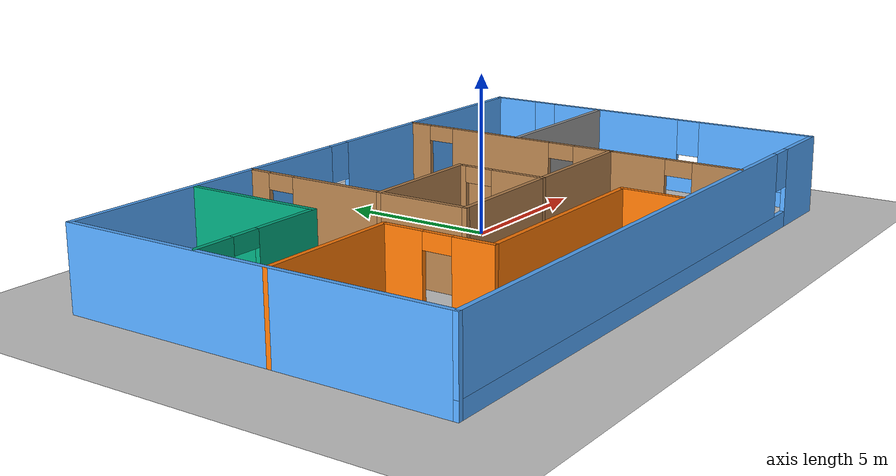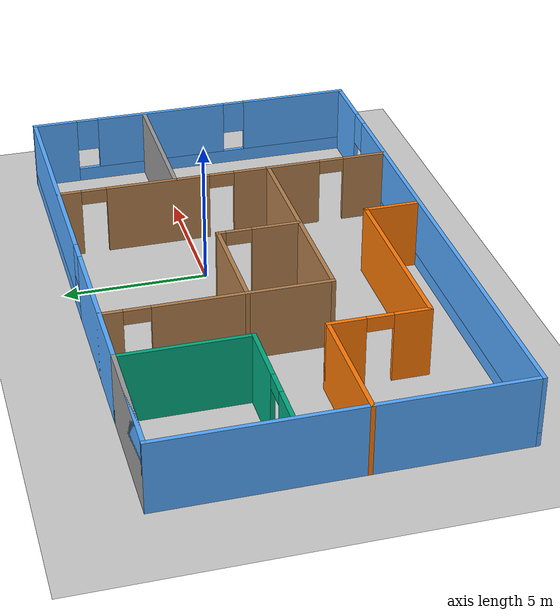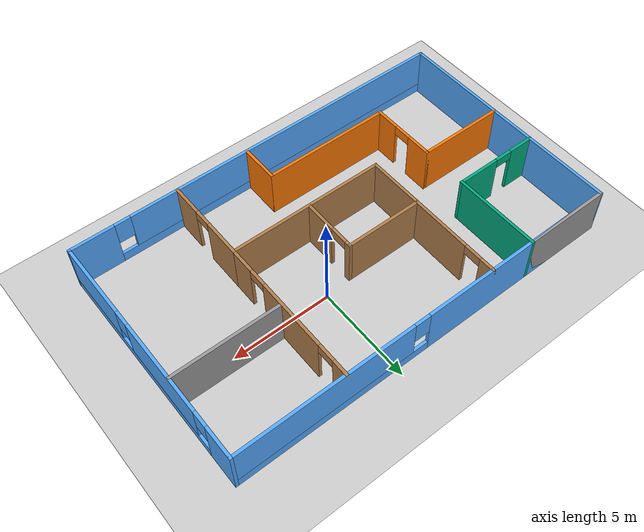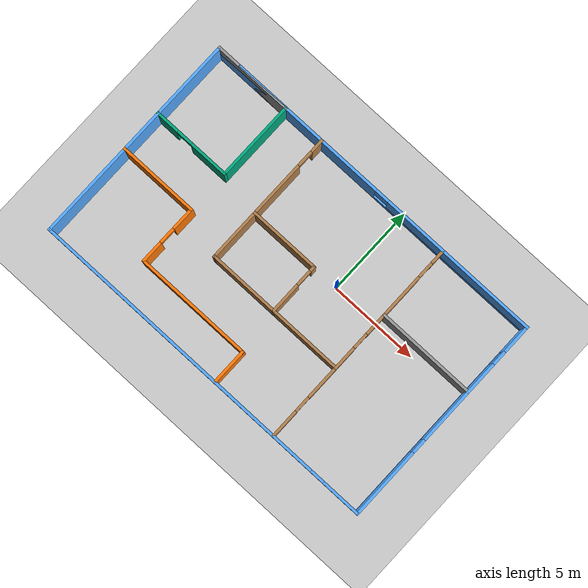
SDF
<sdf version="1.6">
 <world name="default">
  <model name="ground_plane">
   <static>1</static>
   <link name="link">
    <collision name="collision">
     <geometry><plane><normal>0 0 1</normal><size>100 100</size></plane></geometry>
     <surface><friction><ode><mu>100</mu><mu2>50</mu2></ode></friction></surface>
    </collision>
    <visual name="visual">
     <cast_shadows>0</cast_shadows>
     <geometry><plane><normal>0 0 1</normal><size>100 100</size></plane></geometry>
     <material>
      <script><uri>file://media/materials/scripts/gazebo.material</uri><name>Gazebo/Grey</name></script>
     </material>
    </visual>
   </link>
  </model>
  <model name="office">
   <pose>-1.90978 -1.39181 0 0 -0 0</pose>
   <link name="Wall_22">
    <pose>0 6 0 0 -0 0</pose>
    <visual name="Wall_22_Visual_0">
     <pose>-4.91103 0 1.25 0 -0 0</pose>
     <geometry><box><size>10.3279 0.15 2.5</size></box></geometry>
     <material>
      <script><uri>file://media/materials/scripts/gazebo.material</uri><name>Gazebo/Grey</name></script>
      <ambient>0.333333 0.666667 1 1</ambient>
     </material>
    </visual>
    <collision name="Wall_22_Collision_0">
     <geometry><box><size>10.3279 0.15 2.5</size></box></geometry>
     <pose>-4.91103 0 1.25 0 -0 0</pose>
    </collision>
    <visual name="Wall_22_Visual_1">
     <pose>5.16397 0 0.25 0 -0 0</pose>
     <geometry><box><size>9.82205 0.15 0.5</size></box></geometry>
     <material>
      <script><uri>file://media/materials/scripts/gazebo.material</uri><name>Gazebo/Grey</name></script>
      <ambient>0.333333 0.666667 1 1</ambient>
     </material>
    </visual>
    <collision name="Wall_22_Collision_1">
     <geometry><box><size>9.82205 0.15 0.5</size></box></geometry>
     <pose>5.16397 0 0.25 0 -0 0</pose>
    </collision>
    <visual name="Wall_22_Visual_2">
     <pose>5.56397 0 1.5 0 -0 0</pose>
     <geometry><box><size>9.02205 0.15 2</size></box></geometry>
     <material>
      <script><uri>file://media/materials/scripts/gazebo.material</uri><name>Gazebo/Grey</name></script>
      <ambient>0.333333 0.666667 1 1</ambient>
     </material>
    </visual>
    <collision name="Wall_22_Collision_2">
     <geometry><box><size>9.02205 0.15 2</size></box></geometry>
     <pose>5.56397 0 1.5 0 -0 0</pose>
    </collision>
    <visual name="Wall_22_Visual_3">
     <pose>0.652946 0 1.9 0 -0 0</pose>
     <geometry><box><size>0.8 0.15 1.2</size></box></geometry>
     <material>
      <script><uri>file://media/materials/scripts/gazebo.material</uri><name>Gazebo/Grey</name></script>
      <ambient>0.333333 0.666667 1 1</ambient>
     </material>
    </visual>
    <collision name="Wall_22_Collision_3">
     <geometry><box><size>0.8 0.15 1.2</size></box></geometry>
     <pose>0.652946 0 1.9 0 -0 0</pose>
    </collision>
   </link>
   <link name="Wall_23">
    <pose>10 0 0 0 0 -1.5708</pose>
    <visual name="Wall_23_Visual_0">
     <pose>-5.24954 0 1.25 0 -0 0</pose>
     <geometry><box><size>1.65093 0.15 2.5</size></box></geometry>
     <material>
      <script><uri>file://media/materials/scripts/gazebo.material</uri><name>Gazebo/Grey</name></script>
      <ambient>0.333333 0.666667 1 1</ambient>
     </material>
    </visual>
    <collision name="Wall_23_Collision_0">
     <geometry><box><size>1.65093 0.15 2.5</size></box></geometry>
     <pose>-5.24954 0 1.25 0 -0 0</pose>
    </collision>
    <visual name="Wall_23_Visual_1">
     <pose>0.825463 0 0.25 0 -0 0</pose>
     <geometry><box><size>10.4991 0.15 0.5</size></box></geometry>
     <material>
      <script><uri>file://media/materials/scripts/gazebo.material</uri><name>Gazebo/Grey</name></script>
      <ambient>0.333333 0.666667 1 1</ambient>
     </material>
    </visual>
    <collision name="Wall_23_Collision_1">
     <geometry><box><size>10.4991 0.15 0.5</size></box></geometry>
     <pose>0.825463 0 0.25 0 -0 0</pose>
    </collision>
    <visual name="Wall_23_Visual_2">
     <pose>-1.17459 0 1.5 0 -0 0</pose>
     <geometry><box><size>4.89896 0.15 2</size></box></geometry>
     <material>
      <script><uri>file://media/materials/scripts/gazebo.material</uri><name>Gazebo/Grey</name></script>
      <ambient>0.333333 0.666667 1 1</ambient>
     </material>
    </visual>
    <collision name="Wall_23_Collision_2">
     <geometry><box><size>4.89896 0.15 2</size></box></geometry>
     <pose>-1.17459 0 1.5 0 -0 0</pose>
    </collision>
    <visual name="Wall_23_Visual_3">
     <pose>4.07494 0 1.5 0 -0 0</pose>
     <geometry><box><size>4.00011 0.15 2</size></box></geometry>
     <material>
      <script><uri>file://media/materials/scripts/gazebo.material</uri><name>Gazebo/Grey</name></script>
      <ambient>0.333333 0.666667 1 1</ambient>
     </material>
    </visual>
    <collision name="Wall_23_Collision_3">
     <geometry><box><size>4.00011 0.15 2</size></box></geometry>
     <pose>4.07494 0 1.5 0 -0 0</pose>
    </collision>
    <visual name="Wall_23_Visual_4">
     <pose>-4.02407 0 1.9 0 -0 0</pose>
     <geometry><box><size>0.8 0.15 1.2</size></box></geometry>
     <material>
      <script><uri>file://media/materials/scripts/gazebo.material</uri><name>Gazebo/Grey</name></script>
      <ambient>0.333333 0.666667 1 1</ambient>
     </material>
    </visual>
    <collision name="Wall_23_Collision_4">
     <geometry><box><size>0.8 0.15 1.2</size></box></geometry>
     <pose>-4.02407 0 1.9 0 -0 0</pose>
    </collision>
    <visual name="Wall_23_Visual_5">
     <pose>1.67489 0 1.9 0 -0 0</pose>
     <geometry><box><size>0.8 0.15 1.2</size></box></geometry>
     <material>
      <script><uri>file://media/materials/scripts/gazebo.material</uri><name>Gazebo/Grey</name></script>
      <ambient>0.333333 0.666667 1 1</ambient>
     </material>
    </visual>
    <collision name="Wall_23_Collision_5">
     <geometry><box><size>0.8 0.15 1.2</size></box></geometry>
     <pose>1.67489 0 1.9 0 -0 0</pose>
    </collision>
   </link>
   <link name="Wall_24">
    <pose>0 -6 0 0 -0 3.14159</pose>
    <visual name="Wall_24_Visual_0">
     <pose>-8.94993 0 1.25 0 -0 0</pose>
     <geometry><box><size>2.25014 0.15 2.5</size></box></geometry>
     <material>
      <script><uri>file://media/materials/scripts/gazebo.material</uri><name>Gazebo/Grey</name></script>
      <ambient>0.333333 0.666667 1 1</ambient>
     </material>
    </visual>
    <collision name="Wall_24_Collision_0">
     <geometry><box><size>2.25014 0.15 2.5</size></box></geometry>
     <pose>-8.94993 0 1.25 0 -0 0</pose>
    </collision>
    <visual name="Wall_24_Visual_1">
     <pose>1.12507 0 0.25 0 -0 0</pose>
     <geometry><box><size>17.8999 0.15 0.5</size></box></geometry>
     <material>
      <script><uri>file://media/materials/scripts/gazebo.material</uri><name>Gazebo/Grey</name></script>
      <ambient>0.333333 0.666667 1 1</ambient>
     </material>
    </visual>
    <collision name="Wall_24_Collision_1">
     <geometry><box><size>17.8999 0.15 0.5</size></box></geometry>
     <pose>1.12507 0 0.25 0 -0 0</pose>
    </collision>
    <visual name="Wall_24_Visual_2">
     <pose>1.52507 0 1.5 0 -0 0</pose>
     <geometry><box><size>17.0999 0.15 2</size></box></geometry>
     <material>
      <script><uri>file://media/materials/scripts/gazebo.material</uri><name>Gazebo/Grey</name></script>
      <ambient>0.333333 0.666667 1 1</ambient>
     </material>
    </visual>
    <collision name="Wall_24_Collision_2">
     <geometry><box><size>17.0999 0.15 2</size></box></geometry>
     <pose>1.52507 0 1.5 0 -0 0</pose>
    </collision>
    <visual name="Wall_24_Visual_3">
     <pose>-7.42486 0 1.9 0 -0 0</pose>
     <geometry><box><size>0.8 0.15 1.2</size></box></geometry>
     <material>
      <script><uri>file://media/materials/scripts/gazebo.material</uri><name>Gazebo/Grey</name></script>
      <ambient>0.333333 0.666667 1 1</ambient>
     </material>
    </visual>
    <collision name="Wall_24_Collision_3">
     <geometry><box><size>0.8 0.15 1.2</size></box></geometry>
     <pose>-7.42486 0 1.9 0 -0 0</pose>
    </collision>
   </link>
   <link name="Wall_25">
    <collision name="Wall_25_Collision">
     <geometry><box><size>12.15 0.15 2.5</size></box></geometry>
     <pose>0 0 1.25 0 -0 0</pose>
    </collision>
    <visual name="Wall_25_Visual">
     <pose>0 0 1.25 0 -0 0</pose>
     <geometry><box><size>12.15 0.15 2.5</size></box></geometry>
     <material>
      <script><uri>file://media/materials/scripts/gazebo.material</uri><name>Gazebo/Grey</name></script>
      <ambient>0.333333 0.666667 1 1</ambient>
     </material>
    </visual>
    <pose>-10 0 0 0 -0 1.5708</pose>
   </link>
   <link name="Wall_29">
    <collision name="Wall_29_Collision">
     <geometry><box><size>4.5 0.15 2.5</size></box></geometry>
     <pose>0 0 1.25 0 -0 0</pose>
    </collision>
    <visual name="Wall_29_Visual">
     <pose>0 0 1.25 0 -0 0</pose>
     <geometry><box><size>4.5 0.15 2.5</size></box></geometry>
     <material>
      <script><uri>file://media/materials/scripts/gazebo.material</uri><name>Gazebo/Grey</name></script>
      <ambient>1 1 1 1</ambient>
     </material>
    </visual>
    <pose>-7.825 6 0 0 -0 0</pose>
   </link>
   <link name="Wall_30">
    <collision name="Wall_30_Collision">
     <geometry><box><size>4.5 0.15 2.5</size></box></geometry>
     <pose>0 0 1.25 0 -0 0</pose>
    </collision>
    <visual name="Wall_30_Visual">
     <pose>0 0 1.25 0 -0 0</pose>
     <geometry><box><size>4.5 0.15 2.5</size></box></geometry>
     <material>
      <script><uri>file://media/materials/scripts/gazebo.material</uri><name>Gazebo/Grey</name></script>
      <ambient>0 0.666667 0.498039 1</ambient>
     </material>
    </visual>
    <pose>-5.65 3.825 0 0 0 -1.5708</pose>
   </link>
   <link name="Wall_31">
    <pose>-7.825 1.65 0 0 -0 3.14159</pose>
    <visual name="Wall_31_Visual_0">
     <pose>-1.13886 0 1.25 0 -0 0</pose>
     <geometry><box><size>2.22228 0.15 2.5</size></box></geometry>
     <material>
      <script><uri>file://media/materials/scripts/gazebo.material</uri><name>Gazebo/Grey</name></script>
      <ambient>0 0.666667 0.498039 1</ambient>
     </material>
    </visual>
    <collision name="Wall_31_Collision_0">
     <geometry><box><size>2.22228 0.15 2.5</size></box></geometry>
     <pose>-1.13886 0 1.25 0 -0 0</pose>
    </collision>
    <visual name="Wall_31_Visual_1">
     <pose>1.56114 0 1.25 0 -0 0</pose>
     <geometry><box><size>1.37772 0.15 2.5</size></box></geometry>
     <material>
      <script><uri>file://media/materials/scripts/gazebo.material</uri><name>Gazebo/Grey</name></script>
      <ambient>0 0.666667 0.498039 1</ambient>
     </material>
    </visual>
    <collision name="Wall_31_Collision_1">
     <geometry><box><size>1.37772 0.15 2.5</size></box></geometry>
     <pose>1.56114 0 1.25 0 -0 0</pose>
    </collision>
    <visual name="Wall_31_Visual_2">
     <pose>0.422281 0 2.25 0 -0 0</pose>
     <geometry><box><size>0.9 0.15 0.5</size></box></geometry>
     <material>
      <script><uri>file://media/materials/scripts/gazebo.material</uri><name>Gazebo/Grey</name></script>
      <ambient>0 0.666667 0.498039 1</ambient>
     </material>
    </visual>
    <collision name="Wall_31_Collision_2">
     <geometry><box><size>0.9 0.15 0.5</size></box></geometry>
     <pose>0.422281 0 2.25 0 -0 0</pose>
    </collision>
   </link>
   <link name="Wall_33">
    <collision name="Wall_33_Collision">
     <geometry><box><size>4.5 0.15 2.5</size></box></geometry>
     <pose>0 0 1.25 0 -0 0</pose>
    </collision>
    <visual name="Wall_33_Visual">
     <pose>0 0 1.25 0 -0 0</pose>
     <geometry><box><size>4.5 0.15 2.5</size></box></geometry>
     <material>
      <script><uri>file://media/materials/scripts/gazebo.material</uri><name>Gazebo/Grey</name></script>
      <ambient>0.996078 0.47451 0.0196078 1</ambient>
     </material>
    </visual>
    <pose>-7.825 -0.7 0 0 -0 0</pose>
   </link>
   <link name="Wall_34">
    <pose>-5.65 -2.375 0 0 0 -1.5708</pose>
    <visual name="Wall_34_Visual_0">
     <pose>-1.08983 0 1.25 0 -0 0</pose>
     <geometry><box><size>1.32034 0.15 2.5</size></box></geometry>
     <material>
      <script><uri>file://media/materials/scripts/gazebo.material</uri><name>Gazebo/Grey</name></script>
      <ambient>0.996078 0.47451 0.0196078 1</ambient>
     </material>
    </visual>
    <collision name="Wall_34_Collision_0">
     <geometry><box><size>1.32034 0.15 2.5</size></box></geometry>
     <pose>-1.08983 0 1.25 0 -0 0</pose>
    </collision>
    <visual name="Wall_34_Visual_1">
     <pose>1.11017 0 1.25 0 -0 0</pose>
     <geometry><box><size>1.27966 0.15 2.5</size></box></geometry>
     <material>
      <script><uri>file://media/materials/scripts/gazebo.material</uri><name>Gazebo/Grey</name></script>
      <ambient>0.996078 0.47451 0.0196078 1</ambient>
     </material>
    </visual>
    <collision name="Wall_34_Collision_1">
     <geometry><box><size>1.27966 0.15 2.5</size></box></geometry>
     <pose>1.11017 0 1.25 0 -0 0</pose>
    </collision>
    <visual name="Wall_34_Visual_2">
     <pose>0.020337 0 2.25 0 -0 0</pose>
     <geometry><box><size>0.9 0.15 0.5</size></box></geometry>
     <material>
      <script><uri>file://media/materials/scripts/gazebo.material</uri><name>Gazebo/Grey</name></script>
      <ambient>0.996078 0.47451 0.0196078 1</ambient>
     </material>
    </visual>
    <collision name="Wall_34_Collision_2">
     <geometry><box><size>0.9 0.15 0.5</size></box></geometry>
     <pose>0.020337 0 2.25 0 -0 0</pose>
    </collision>
   </link>
   <link name="Wall_35">
    <collision name="Wall_35_Collision">
     <geometry><box><size>6.59573 0.15 2.5</size></box></geometry>
     <pose>0 0 1.25 0 -0 0</pose>
    </collision>
    <visual name="Wall_35_Visual">
     <pose>0 0 1.25 0 -0 0</pose>
     <geometry><box><size>6.59573 0.15 2.5</size></box></geometry>
     <material>
      <script><uri>file://media/materials/scripts/gazebo.material</uri><name>Gazebo/Grey</name></script>
      <ambient>0.996078 0.47451 0.0196078 1</ambient>
     </material>
    </visual>
    <pose>-2.42713 -4.05 0 0 -0 0</pose>
   </link>
   <link name="Wall_36">
    <collision name="Wall_36_Collision">
     <geometry><box><size>2 0.15 2.5</size></box></geometry>
     <pose>0 0 1.25 0 -0 0</pose>
    </collision>
    <visual name="Wall_36_Visual">
     <pose>0 0 1.25 0 -0 0</pose>
     <geometry><box><size>2 0.15 2.5</size></box></geometry>
     <material>
      <script><uri>file://media/materials/scripts/gazebo.material</uri><name>Gazebo/Grey</name></script>
      <ambient>0.996078 0.47451 0.0196078 1</ambient>
     </material>
    </visual>
    <pose>0.795731 -4.975 0 0 0 -1.5708</pose>
   </link>
   <link name="Wall_40">
    <pose>4.579 2.2 0 0 0 -1.5708</pose>
    <visual name="Wall_40_Visual_0">
     <pose>-3.43812 0 1.25 0 -0 0</pose>
     <geometry><box><size>0.873756 0.15 2.5</size></box></geometry>
     <material>
      <script><uri>file://media/materials/scripts/gazebo.material</uri><name>Gazebo/Wood</name></script>
      <ambient>1 1 1 1</ambient>
     </material>
    </visual>
    <collision name="Wall_40_Collision_0">
     <geometry><box><size>0.873756 0.15 2.5</size></box></geometry>
     <pose>-3.43812 0 1.25 0 -0 0</pose>
    </collision>
    <visual name="Wall_40_Visual_1">
     <pose>-0.244032 0 1.25 0 -0 0</pose>
     <geometry><box><size>3.71442 0.15 2.5</size></box></geometry>
     <material>
      <script><uri>file://media/materials/scripts/gazebo.material</uri><name>Gazebo/Wood</name></script>
      <ambient>1 1 1 1</ambient>
     </material>
    </visual>
    <collision name="Wall_40_Collision_1">
     <geometry><box><size>3.71442 0.15 2.5</size></box></geometry>
     <pose>-0.244032 0 1.25 0 -0 0</pose>
    </collision>
    <visual name="Wall_40_Visual_2">
     <pose>3.19409 0 1.25 0 -0 0</pose>
     <geometry><box><size>1.36182 0.15 2.5</size></box></geometry>
     <material>
      <script><uri>file://media/materials/scripts/gazebo.material</uri><name>Gazebo/Wood</name></script>
      <ambient>1 1 1 1</ambient>
     </material>
    </visual>
    <collision name="Wall_40_Collision_2">
     <geometry><box><size>1.36182 0.15 2.5</size></box></geometry>
     <pose>3.19409 0 1.25 0 -0 0</pose>
    </collision>
    <visual name="Wall_40_Visual_3">
     <pose>-2.55124 0 2.25 0 -0 0</pose>
     <geometry><box><size>0.9 0.15 0.5</size></box></geometry>
     <material>
      <script><uri>file://media/materials/scripts/gazebo.material</uri><name>Gazebo/Wood</name></script>
      <ambient>1 1 1 1</ambient>
     </material>
    </visual>
    <collision name="Wall_40_Collision_3">
     <geometry><box><size>0.9 0.15 0.5</size></box></geometry>
     <pose>-2.55124 0 2.25 0 -0 0</pose>
    </collision>
    <visual name="Wall_40_Visual_4">
     <pose>2.06318 0 2.25 0 -0 0</pose>
     <geometry><box><size>0.9 0.15 0.5</size></box></geometry>
     <material>
      <script><uri>file://media/materials/scripts/gazebo.material</uri><name>Gazebo/Wood</name></script>
      <ambient>1 1 1 1</ambient>
     </material>
    </visual>
    <collision name="Wall_40_Collision_4">
     <geometry><box><size>0.9 0.15 0.5</size></box></geometry>
     <pose>2.06318 0 2.25 0 -0 0</pose>
    </collision>
   </link>
   <link name="Wall_41">
    <collision name="Wall_41_Collision">
     <geometry><box><size>8.029 0.15 2.5</size></box></geometry>
     <pose>0 0 1.25 0 -0 0</pose>
    </collision>
    <visual name="Wall_41_Visual">
     <pose>0 0 1.25 0 -0 0</pose>
     <geometry><box><size>8.029 0.15 2.5</size></box></geometry>
     <material>
      <script><uri>file://media/materials/scripts/gazebo.material</uri><name>Gazebo/Wood</name></script>
      <ambient>1 1 1 1</ambient>
     </material>
    </visual>
    <pose>0.6395 -1.6 0 0 -0 3.14159</pose>
   </link>
   <link name="Wall_42">
    <pose>-3.3 2.2 0 0 -0 1.5708</pose>
    <visual name="Wall_42_Visual_0">
     <pose>-0.85579 0 1.25 0 -0 0</pose>
     <geometry><box><size>6.03842 0.15 2.5</size></box></geometry>
     <material>
      <script><uri>file://media/materials/scripts/gazebo.material</uri><name>Gazebo/Wood</name></script>
      <ambient>1 1 1 1</ambient>
     </material>
    </visual>
    <collision name="Wall_42_Collision_0">
     <geometry><box><size>6.03842 0.15 2.5</size></box></geometry>
     <pose>-0.85579 0 1.25 0 -0 0</pose>
    </collision>
    <visual name="Wall_42_Visual_1">
     <pose>3.46921 0 1.25 0 -0 0</pose>
     <geometry><box><size>0.811579 0.15 2.5</size></box></geometry>
     <material>
      <script><uri>file://media/materials/scripts/gazebo.material</uri><name>Gazebo/Wood</name></script>
      <ambient>1 1 1 1</ambient>
     </material>
    </visual>
    <collision name="Wall_42_Collision_1">
     <geometry><box><size>0.811579 0.15 2.5</size></box></geometry>
     <pose>3.46921 0 1.25 0 -0 0</pose>
    </collision>
    <visual name="Wall_42_Visual_2">
     <pose>2.61342 0 2.25 0 -0 0</pose>
     <geometry><box><size>0.9 0.15 0.5</size></box></geometry>
     <material>
      <script><uri>file://media/materials/scripts/gazebo.material</uri><name>Gazebo/Wood</name></script>
      <ambient>1 1 1 1</ambient>
     </material>
    </visual>
    <collision name="Wall_42_Collision_2">
     <geometry><box><size>0.9 0.15 0.5</size></box></geometry>
     <pose>2.61342 0 2.25 0 -0 0</pose>
    </collision>
   </link>
   <link name="Wall_48">
    <pose>4.579 -3.775 0 0 0 -1.5708</pose>
    <visual name="Wall_48_Visual_0">
     <pose>-1.25662 0 1.25 0 -0 0</pose>
     <geometry><box><size>1.98676 0.15 2.5</size></box></geometry>
     <material>
      <script><uri>file://media/materials/scripts/gazebo.material</uri><name>Gazebo/Wood</name></script>
      <ambient>1 1 1 1</ambient>
     </material>
    </visual>
    <collision name="Wall_48_Collision_0">
     <geometry><box><size>1.98676 0.15 2.5</size></box></geometry>
     <pose>-1.25662 0 1.25 0 -0 0</pose>
    </collision>
    <visual name="Wall_48_Visual_1">
     <pose>1.44338 0 1.25 0 -0 0</pose>
     <geometry><box><size>1.61324 0.15 2.5</size></box></geometry>
     <material>
      <script><uri>file://media/materials/scripts/gazebo.material</uri><name>Gazebo/Wood</name></script>
      <ambient>1 1 1 1</ambient>
     </material>
    </visual>
    <collision name="Wall_48_Collision_1">
     <geometry><box><size>1.61324 0.15 2.5</size></box></geometry>
     <pose>1.44338 0 1.25 0 -0 0</pose>
    </collision>
    <visual name="Wall_48_Visual_2">
     <pose>0.186763 0 2.25 0 -0 0</pose>
     <geometry><box><size>0.9 0.15 0.5</size></box></geometry>
     <material>
      <script><uri>file://media/materials/scripts/gazebo.material</uri><name>Gazebo/Wood</name></script>
      <ambient>1 1 1 1</ambient>
     </material>
    </visual>
    <collision name="Wall_48_Collision_2">
     <geometry><box><size>0.9 0.15 0.5</size></box></geometry>
     <pose>0.186763 0 2.25 0 -0 0</pose>
    </collision>
   </link>
   <link name="Wall_50">
    <collision name="Wall_50_Collision">
     <geometry><box><size>5.5 0.15 2.5</size></box></geometry>
     <pose>0 0 1.25 0 -0 0</pose>
    </collision>
    <visual name="Wall_50_Visual">
     <pose>0 0 1.25 0 -0 0</pose>
     <geometry><box><size>5.5 0.15 2.5</size></box></geometry>
     <material>
      <script><uri>file://media/materials/scripts/gazebo.material</uri><name>Gazebo/Grey</name></script>
      <ambient>1 1 1 1</ambient>
     </material>
    </visual>
    <pose>7.286 1.825 0 0 -0 0</pose>
   </link>
   <link name="Wall_57">
    <collision name="Wall_57_Collision">
     <geometry><box><size>4 0.15 2.5</size></box></geometry>
     <pose>0 0 1.25 0 -0 0</pose>
    </collision>
    <visual name="Wall_57_Visual">
     <pose>0 0 1.25 0 -0 0</pose>
     <geometry><box><size>4 0.15 2.5</size></box></geometry>
     <material>
      <script><uri>file://media/materials/scripts/gazebo.material</uri><name>Gazebo/Wood</name></script>
      <ambient>1 1 1 1</ambient>
     </material>
    </visual>
    <pose>-1.375 1.25 0 0 -0 0</pose>
   </link>
   <link name="Wall_58">
    <pose>0.55 -0.175 0 0 0 -1.5708</pose>
    <visual name="Wall_58_Visual_0">
     <pose>-1.33279 0 1.25 0 -0 0</pose>
     <geometry><box><size>0.33443 0.15 2.5</size></box></geometry>
     <material>
      <script><uri>file://media/materials/scripts/gazebo.material</uri><name>Gazebo/Wood</name></script>
      <ambient>1 1 1 1</ambient>
     </material>
    </visual>
    <collision name="Wall_58_Collision_0">
     <geometry><box><size>0.33443 0.15 2.5</size></box></geometry>
     <pose>-1.33279 0 1.25 0 -0 0</pose>
    </collision>
    <visual name="Wall_58_Visual_1">
     <pose>0.617215 0 1.25 0 -0 0</pose>
     <geometry><box><size>1.76557 0.15 2.5</size></box></geometry>
     <material>
      <script><uri>file://media/materials/scripts/gazebo.material</uri><name>Gazebo/Wood</name></script>
      <ambient>1 1 1 1</ambient>
     </material>
    </visual>
    <collision name="Wall_58_Collision_1">
     <geometry><box><size>1.76557 0.15 2.5</size></box></geometry>
     <pose>0.617215 0 1.25 0 -0 0</pose>
    </collision>
    <visual name="Wall_58_Visual_2">
     <pose>-0.71557 0 2.25 0 -0 0</pose>
     <geometry><box><size>0.9 0.15 0.5</size></box></geometry>
     <material>
      <script><uri>file://media/materials/scripts/gazebo.material</uri><name>Gazebo/Wood</name></script>
      <ambient>1 1 1 1</ambient>
     </material>
    </visual>
    <collision name="Wall_58_Collision_2">
     <geometry><box><size>0.9 0.15 0.5</size></box></geometry>
     <pose>-0.71557 0 2.25 0 -0 0</pose>
    </collision>
   </link>
   <static>1</static>
  </model>
 </world>
</sdf>
